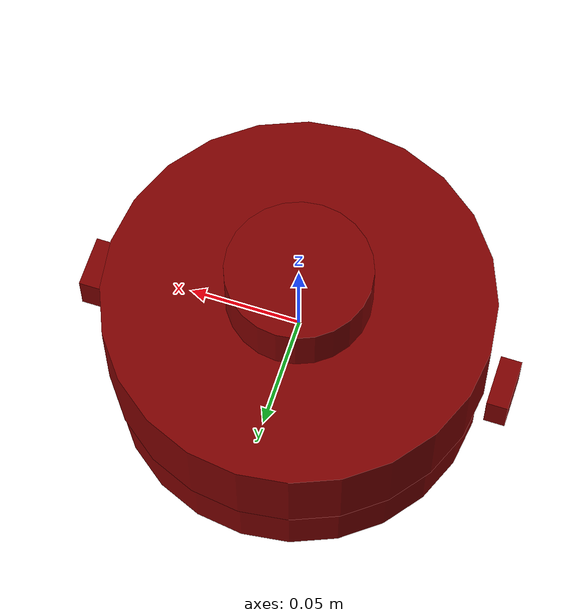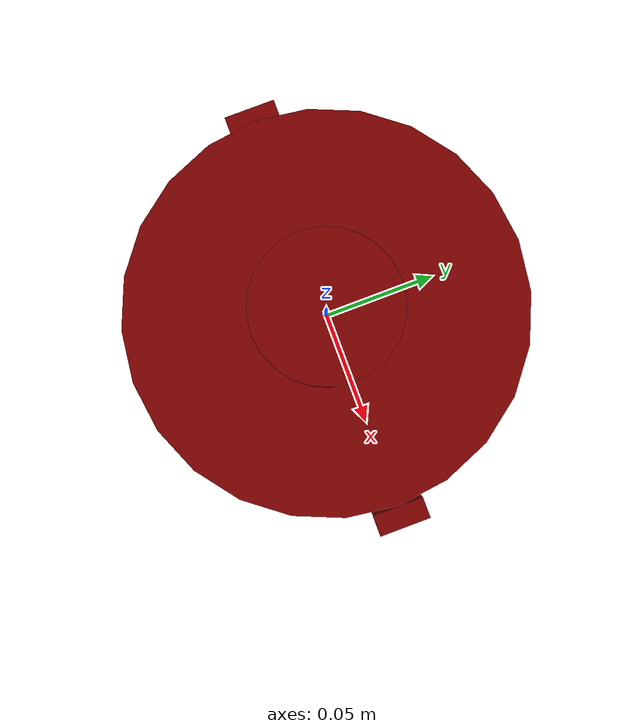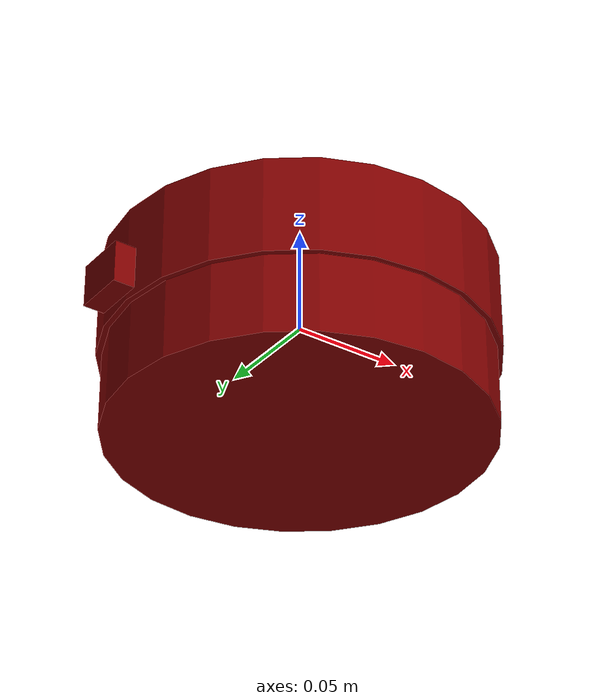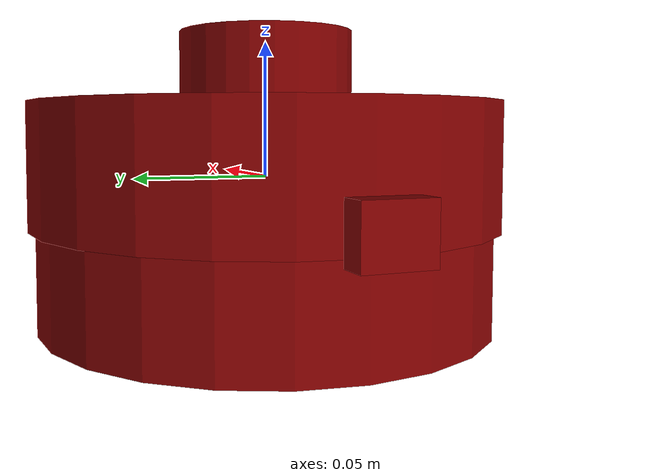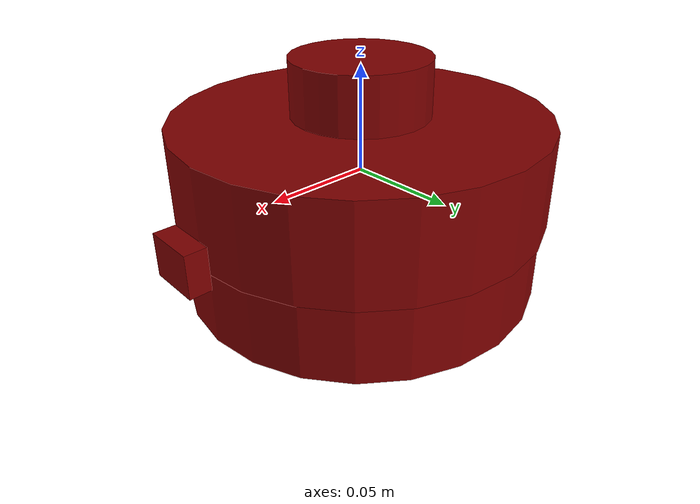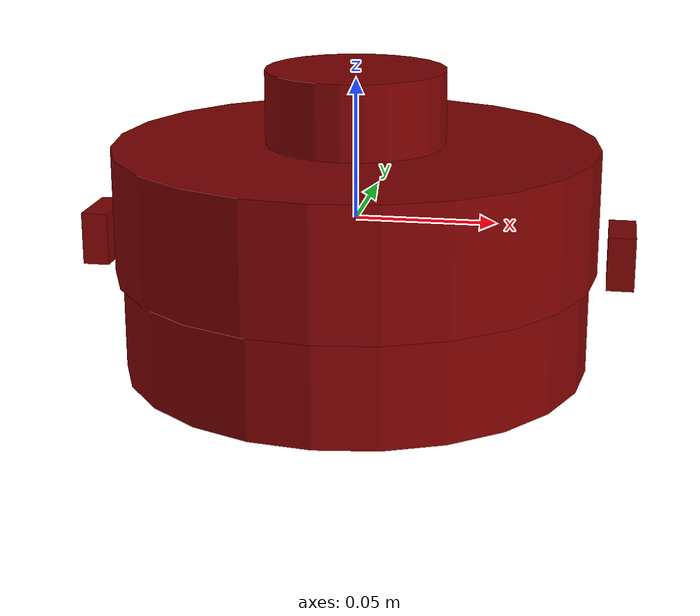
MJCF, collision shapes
<?xml version='1.0' encoding='UTF-8'?>
<mujoco model="model">
  <option timestep="0.002" gravity="0.0 0.0 -9.81"/>
  <compiler angle="radian"/>
  <asset>
    <mesh file="visuals/lid.obj" name="lid_vis"/>
    <texture file="visuals/T_lid_BC001.png" name="lid_material" type="2d"/>
    <material name="lid_material" rgba="1 1 1 1.0" texture="lid_material" shininess="0.2512328028678894" specular="0.9103448502657381"/>
  </asset>
  <default>
    <default class="visual">
      <geom conaffinity="0" contype="0" group="1" type="mesh"/>
    </default>
    <default class="collision">
      <geom group="0" rgba="0.5 0 0 0.5" density="1000" solref="0.01 1.8" solimp="0.8 0.95 0.02" condim="3"/>
    </default>
    <default class="spawn">
      <geom group="0" rgba="1 1 1 0.5" contype="0" conaffinity="0"/>
      <site group="0" rgba="1 1 1 0.5"/>
    </default>
    <default class="region">
      <geom group="1" conaffinity="0" contype="0" rgba="0 1 0 0" mass="0"/>
    </default>
  </default>
  <worldbody>
    <body>
      <body name="object">
        <geom mesh="lid_vis" type="mesh" solimp="0.998 0.998 0.001" solref="0.001 1" friction="0.95 0.3 0.1" class="visual" material="lid_material"/>
        <geom type="cylinder" pos="1.6299542039632797e-05 7.256399840116501e-05 0.004988112812042236" size="0.0861000001430510 0.0224446311593056" quat="1.0 0.0 0.0 0.0" class="collision"/>
        <geom type="cylinder" name="handle_main" pos="3.7034042179584503e-06 -1.823529601097107e-06 0.03172941505908966" size="0.032 0.022" quat="1.0 0.0 0.0 0.0" class="collision"/>
        <geom type="box" pos="-0.09416344463825226 -8.743442595005035e-05 -0.0095" size="0.0048 0.0116751216351986 0.0095302864909172" quat="0 1 0 0" class="collision"/>
        <geom type="cylinder" pos="1.6299542039632797e-05 7.256399840116501e-05 -0.03" size="0.08352 0.023496" quat="1.0 0.0 0.0 0.0" class="collision"/>
        <geom type="box" pos="0.09416344463825226 8.858926594257355e-05 -0.0095" size="0.0048 0.0116751216351986 0.0095302864909172" quat="0 0 1 0" class="collision"/>
        <geom type="cylinder" pos="1.6299542039632797e-05 7.256399840116501e-05 -0.00866931676864624" size="0.08088 0.0234979681670665" quat="1.0 0.0 0.0 0.0" class="collision"/>
        <geom class="region" name="reg_main" type="box" pos="-1.862645149230957e-09 0.0 0.0" size="0.1030931329250340 0.0875621751869201 0.0563979124546050"/>
      </body>
    </body>
  </worldbody>
  <actuator/>
</mujoco>
